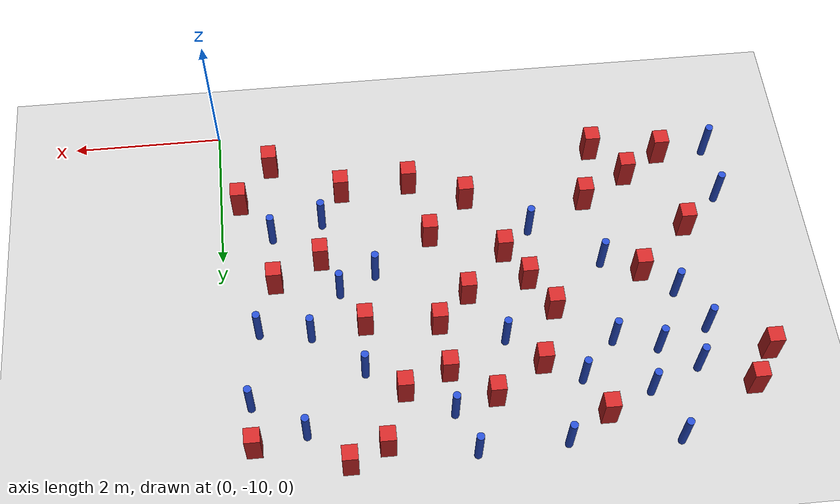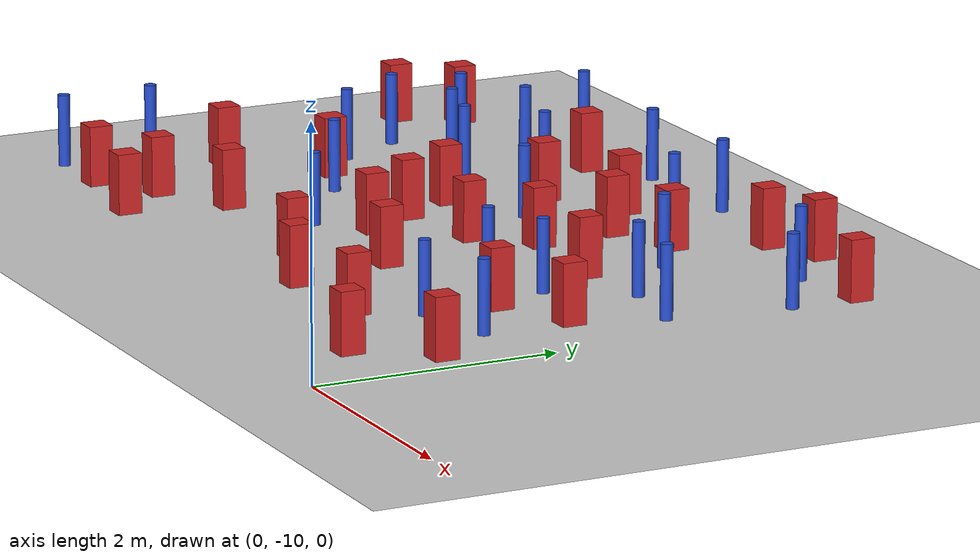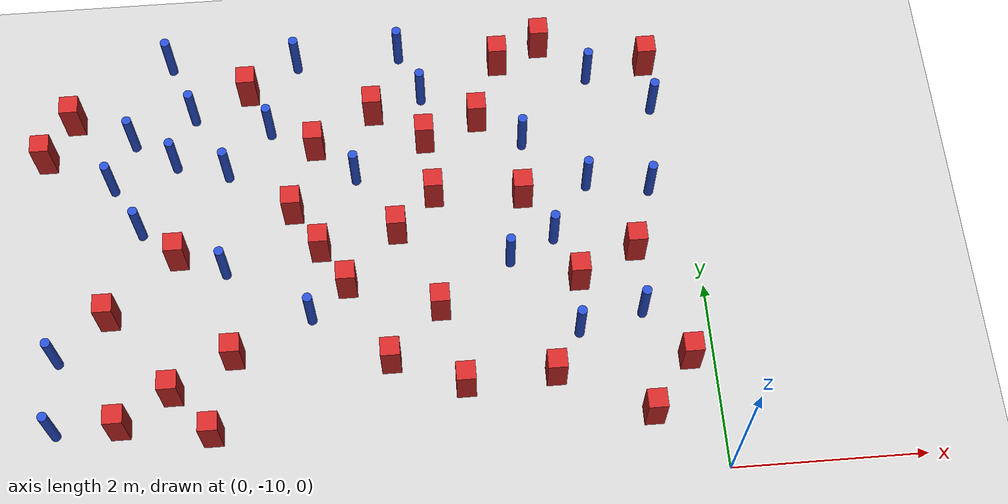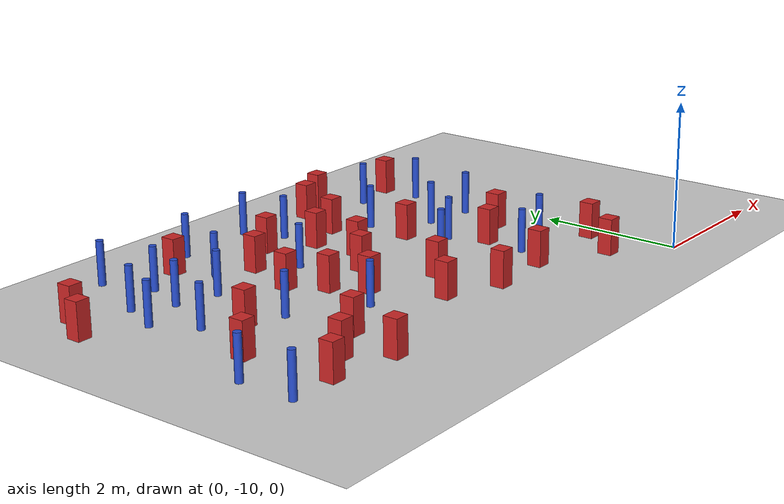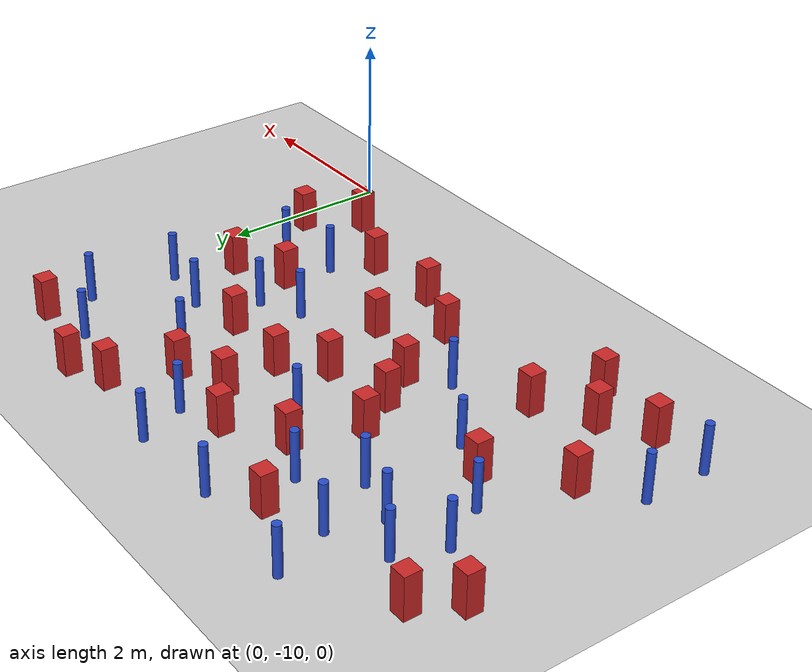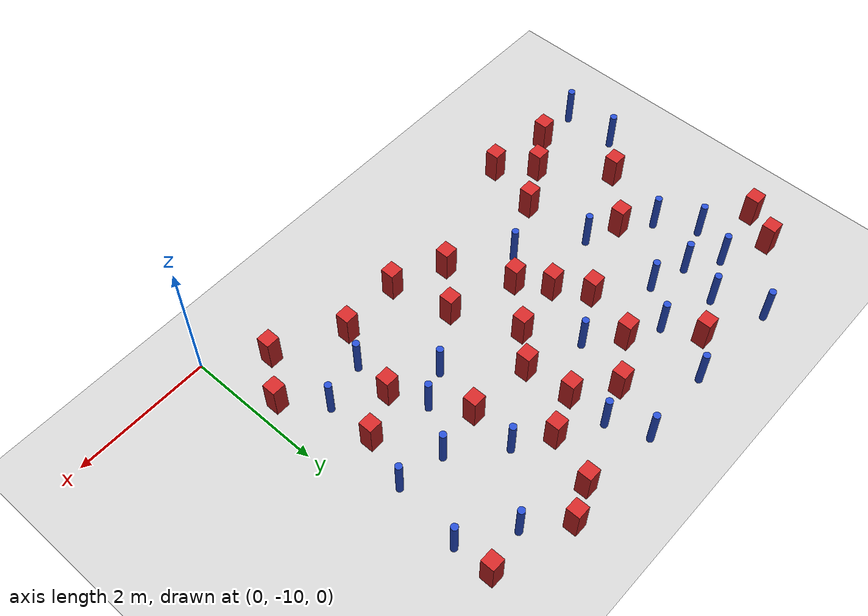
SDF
<sdf version="1.6">
 <world name="default">
  <model name="ground_plane">
   <static>1</static>
   <link name="link">
    <collision name="collision">
     <geometry><plane><normal>0 0 1</normal><size>100 100</size></plane></geometry>
     <surface><friction><ode><mu>100</mu><mu2>50</mu2></ode></friction></surface>
    </collision>
    <visual name="visual">
     <cast_shadows>0</cast_shadows>
     <geometry><plane><normal>0 0 1</normal><size>100 100</size></plane></geometry>
     <material>
      <ambient>1.0 1.0 1.0 1.0</ambient>
      <diffuse>0.8 0.8 0.8 1.0</diffuse>
      <specular>0.01 0.01 0.01 1.000000</specular>
     </material>
    </visual>
   </link>
  </model>
  <model name="square_post_obstacle6">
   <static>true</static>
   <pose>-1.9497129896 -5.14376126057 1.91545236811e-07 -7.35059704564e-06 1.12565212e-07 2.39332434364e-05</pose>
   <link name="link">
    <pose>0 0 0.25 0 -0 0</pose>
    <inertial>
     <mass>100</mass>
     <inertia>
      <ixx>0.166667</ixx>
      <ixy>0</ixy>
      <ixz>0</ixz>
      <iyy>0.166667</iyy>
      <iyz>0</iyz>
      <izz>0.166667</izz>
     </inertia>
    </inertial>
    <collision name="collision"><geometry><box><size>.2 .2 .5</size></box></geometry></collision>
    <visual name="visual">
     <geometry><box><size>.2 .2 .5</size></box></geometry>
     <material>
      <script><name>Gazebo/Red</name><uri>file://media/materials/scripts/gazebo.material</uri></script>
     </material>
    </visual>
   </link>
  </model>
  <model name="square_post_obstacle13">
   <static>true</static>
   <pose>-3.17438952228 -7.16347019154 1.91545236811e-07 -7.35059704564e-06 1.12565212e-07 2.39332434364e-05</pose>
   <link name="link">
    <pose>0 0 0.25 0 -0 0</pose>
    <inertial>
     <mass>100</mass>
     <inertia>
      <ixx>0.166667</ixx>
      <ixy>0</ixy>
      <ixz>0</ixz>
      <iyy>0.166667</iyy>
      <iyz>0</iyz>
      <izz>0.166667</izz>
     </inertia>
    </inertial>
    <collision name="collision"><geometry><box><size>.2 .2 .5</size></box></geometry></collision>
    <visual name="visual">
     <geometry><box><size>.2 .2 .5</size></box></geometry>
     <material>
      <script><name>Gazebo/Red</name><uri>file://media/materials/scripts/gazebo.material</uri></script>
     </material>
    </visual>
   </link>
  </model>
  <model name="square_post_obstacle17">
   <static>true</static>
   <pose>-5.53849942536 -8.81817202763 1.91545236811e-07 -7.35059704564e-06 1.12565212e-07 2.39332434364e-05</pose>
   <link name="link">
    <pose>0 0 0.25 0 -0 0</pose>
    <inertial>
     <mass>100</mass>
     <inertia>
      <ixx>0.166667</ixx>
      <ixy>0</ixy>
      <ixz>0</ixz>
      <iyy>0.166667</iyy>
      <iyz>0</iyz>
      <izz>0.166667</izz>
     </inertia>
    </inertial>
    <collision name="collision"><geometry><box><size>.2 .2 .5</size></box></geometry></collision>
    <visual name="visual">
     <geometry><box><size>.2 .2 .5</size></box></geometry>
     <material>
      <script><name>Gazebo/Red</name><uri>file://media/materials/scripts/gazebo.material</uri></script>
     </material>
    </visual>
   </link>
  </model>
  <model name="square_post_obstacle18">
   <static>true</static>
   <pose>-3.99102402222 -7.31175165487 1.91545236811e-07 -7.35059704564e-06 1.12565212e-07 2.39332434364e-05</pose>
   <link name="link">
    <pose>0 0 0.25 0 -0 0</pose>
    <inertial>
     <mass>100</mass>
     <inertia>
      <ixx>0.166667</ixx>
      <ixy>0</ixy>
      <ixz>0</ixz>
      <iyy>0.166667</iyy>
      <iyz>0</iyz>
      <izz>0.166667</izz>
     </inertia>
    </inertial>
    <collision name="collision"><geometry><box><size>.2 .2 .5</size></box></geometry></collision>
    <visual name="visual">
     <geometry><box><size>.2 .2 .5</size></box></geometry>
     <material>
      <script><name>Gazebo/Red</name><uri>file://media/materials/scripts/gazebo.material</uri></script>
     </material>
    </visual>
   </link>
  </model>
  <model name="square_post_obstacle19">
   <static>true</static>
   <pose>-2.56783436502 -8.94946485661 1.91545236811e-07 -7.35059704564e-06 1.12565212e-07 2.39332434364e-05</pose>
   <link name="link">
    <pose>0 0 0.25 0 -0 0</pose>
    <inertial>
     <mass>100</mass>
     <inertia>
      <ixx>0.166667</ixx>
      <ixy>0</ixy>
      <ixz>0</ixz>
      <iyy>0.166667</iyy>
      <iyz>0</iyz>
      <izz>0.166667</izz>
     </inertia>
    </inertial>
    <collision name="collision"><geometry><box><size>.2 .2 .5</size></box></geometry></collision>
    <visual name="visual">
     <geometry><box><size>.2 .2 .5</size></box></geometry>
     <material>
      <script><name>Gazebo/Red</name><uri>file://media/materials/scripts/gazebo.material</uri></script>
     </material>
    </visual>
   </link>
  </model>
  <model name="pole_obstacle21">
   <static>true</static>
   <pose>-0.969122183617 -5.39257251336 7.38925637345e-09 -8.47170692799e-08 1.2497676509e-08 -1.74513093015e-07</pose>
   <link name="link">
    <pose>0 0 0.3 0 -0 0</pose>
    <inertial>
     <mass>1</mass>
     <inertia><ixx>0.145833</ixx><ixy>0</ixy><ixz>0</ixz><iyy>0.145833</iyy><iyz>0</iyz><izz>0.125</izz></inertia>
    </inertial>
    <collision name="collision">
     <geometry><cylinder><radius>0.05</radius><length>.6</length></cylinder></geometry>
    </collision>
    <visual name="visual">
     <geometry><cylinder><radius>0.05</radius><length>.6</length></cylinder></geometry>
     <material>
      <script><name>Gazebo/Blue</name><uri>file://media/materials/scripts/gazebo.material</uri></script>
     </material>
    </visual>
   </link>
  </model>
  <model name="square_post_obstacle32">
   <static>true</static>
   <pose>-0.262640215279 -8.81967978513 1.91545236811e-07 -7.35059704564e-06 1.12565212e-07 2.39332434364e-05</pose>
   <link name="link">
    <pose>0 0 0.25 0 -0 0</pose>
    <inertial>
     <mass>100</mass>
     <inertia>
      <ixx>0.166667</ixx>
      <ixy>0</ixy>
      <ixz>0</ixz>
      <iyy>0.166667</iyy>
      <iyz>0</iyz>
      <izz>0.166667</izz>
     </inertia>
    </inertial>
    <collision name="collision"><geometry><box><size>.2 .2 .5</size></box></geometry></collision>
    <visual name="visual">
     <geometry><box><size>.2 .2 .5</size></box></geometry>
     <material>
      <script><name>Gazebo/Red</name><uri>file://media/materials/scripts/gazebo.material</uri></script>
     </material>
    </visual>
   </link>
  </model>
  <model name="pole_obstacle31">
   <static>true</static>
   <pose>-1.10753142198 -6.73560948309 7.38925637345e-09 -8.47170692799e-08 1.24976765033e-08 -1.74513093018e-07</pose>
   <link name="link">
    <pose>0 0 0.3 0 -0 0</pose>
    <inertial>
     <mass>1</mass>
     <inertia><ixx>0.145833</ixx><ixy>0</ixy><ixz>0</ixz><iyy>0.145833</iyy><iyz>0</iyz><izz>0.125</izz></inertia>
    </inertial>
    <collision name="collision">
     <geometry><cylinder><radius>0.05</radius><length>.6</length></cylinder></geometry>
    </collision>
    <visual name="visual">
     <geometry><cylinder><radius>0.05</radius><length>.6</length></cylinder></geometry>
     <material>
      <script><name>Gazebo/Blue</name><uri>file://media/materials/scripts/gazebo.material</uri></script>
     </material>
    </visual>
   </link>
  </model>
  <model name="pole_obstacle35">
   <static>true</static>
   <pose>-4.9970792314 -7.49175130237 7.38925637345e-09 -8.47170692796e-08 1.24976764786e-08 -1.74513093032e-07</pose>
   <link name="link">
    <pose>0 0 0.3 0 -0 0</pose>
    <inertial>
     <mass>1</mass>
     <inertia><ixx>0.145833</ixx><ixy>0</ixy><ixz>0</ixz><iyy>0.145833</iyy><iyz>0</iyz><izz>0.125</izz></inertia>
    </inertial>
    <collision name="collision">
     <geometry><cylinder><radius>0.05</radius><length>.6</length></cylinder></geometry>
    </collision>
    <visual name="visual">
     <geometry><cylinder><radius>0.05</radius><length>.6</length></cylinder></geometry>
     <material>
      <script><name>Gazebo/Blue</name><uri>file://media/materials/scripts/gazebo.material</uri></script>
     </material>
    </visual>
   </link>
  </model>
  <model name="pole_obstacle36">
   <static>true</static>
   <pose>-5.97270549547 -5.86932141535 7.38925637345e-09 -8.47170692796e-08 1.24976764786e-08 -1.74513093032e-07</pose>
   <link name="link">
    <pose>0 0 0.3 0 -0 0</pose>
    <inertial>
     <mass>1</mass>
     <inertia><ixx>0.145833</ixx><ixy>0</ixy><ixz>0</ixz><iyy>0.145833</iyy><iyz>0</iyz><izz>0.125</izz></inertia>
    </inertial>
    <collision name="collision">
     <geometry><cylinder><radius>0.05</radius><length>.6</length></cylinder></geometry>
    </collision>
    <visual name="visual">
     <geometry><cylinder><radius>0.05</radius><length>.6</length></cylinder></geometry>
     <material>
      <script><name>Gazebo/Blue</name><uri>file://media/materials/scripts/gazebo.material</uri></script>
     </material>
    </visual>
   </link>
  </model>
  <model name="pole_obstacle37">
   <static>true</static>
   <pose>-3.04485487321 -4.95832950182 7.38925637345e-09 -8.47170692798e-08 1.24976765033e-08 -1.74513093019e-07</pose>
   <link name="link">
    <pose>0 0 0.3 0 -0 0</pose>
    <inertial>
     <mass>1</mass>
     <inertia><ixx>0.145833</ixx><ixy>0</ixy><ixz>0</ixz><iyy>0.145833</iyy><iyz>0</iyz><izz>0.125</izz></inertia>
    </inertial>
    <collision name="collision">
     <geometry><cylinder><radius>0.05</radius><length>.6</length></cylinder></geometry>
    </collision>
    <visual name="visual">
     <geometry><cylinder><radius>0.05</radius><length>.6</length></cylinder></geometry>
     <material>
      <script><name>Gazebo/Blue</name><uri>file://media/materials/scripts/gazebo.material</uri></script>
     </material>
    </visual>
   </link>
  </model>
  <model name="pole_obstacle38">
   <static>true</static>
   <pose>-5.57520680139 -4.91393177287 7.38925637345e-09 -8.47170692796e-08 1.24976764786e-08 -1.74513093032e-07</pose>
   <link name="link">
    <pose>0 0 0.3 0 -0 0</pose>
    <inertial>
     <mass>1</mass>
     <inertia><ixx>0.145833</ixx><ixy>0</ixy><ixz>0</ixz><iyy>0.145833</iyy><iyz>0</iyz><izz>0.125</izz></inertia>
    </inertial>
    <collision name="collision">
     <geometry><cylinder><radius>0.05</radius><length>.6</length></cylinder></geometry>
    </collision>
    <visual name="visual">
     <geometry><cylinder><radius>0.05</radius><length>.6</length></cylinder></geometry>
     <material>
      <script><name>Gazebo/Blue</name><uri>file://media/materials/scripts/gazebo.material</uri></script>
     </material>
    </visual>
   </link>
  </model>
  <model name="pole_obstacle41">
   <static>true</static>
   <pose>-3.5843631164 -6.47086507164 7.38925637345e-09 -8.47170692798e-08 1.24976765033e-08 -1.74513093019e-07</pose>
   <link name="link">
    <pose>0 0 0.3 0 -0 0</pose>
    <inertial>
     <mass>1</mass>
     <inertia><ixx>0.145833</ixx><ixy>0</ixy><ixz>0</ixz><iyy>0.145833</iyy><iyz>0</iyz><izz>0.125</izz></inertia>
    </inertial>
    <collision name="collision">
     <geometry><cylinder><radius>0.05</radius><length>.6</length></cylinder></geometry>
    </collision>
    <visual name="visual">
     <geometry><cylinder><radius>0.05</radius><length>.6</length></cylinder></geometry>
     <material>
      <script><name>Gazebo/Blue</name><uri>file://media/materials/scripts/gazebo.material</uri></script>
     </material>
    </visual>
   </link>
  </model>
  <model name="pole_obstacle42">
   <static>true</static>
   <pose>-0.438257830199 -6.84605124284 7.38925637345e-09 -8.471706928e-08 1.24976765079e-08 -1.74513093015e-07</pose>
   <link name="link">
    <pose>0 0 0.3 0 -0 0</pose>
    <inertial>
     <mass>1</mass>
     <inertia><ixx>0.145833</ixx><ixy>0</ixy><ixz>0</ixz><iyy>0.145833</iyy><iyz>0</iyz><izz>0.125</izz></inertia>
    </inertial>
    <collision name="collision">
     <geometry><cylinder><radius>0.05</radius><length>.6</length></cylinder></geometry>
    </collision>
    <visual name="visual">
     <geometry><cylinder><radius>0.05</radius><length>.6</length></cylinder></geometry>
     <material>
      <script><name>Gazebo/Blue</name><uri>file://media/materials/scripts/gazebo.material</uri></script>
     </material>
    </visual>
   </link>
  </model>
  <model name="square_post_obstacle40">
   <static>true</static>
   <pose>-6.19771248265 -7.93682333372 1.91545236811e-07 -7.35059704564e-06 1.12565212e-07 2.39332434364e-05</pose>
   <link name="link">
    <pose>0 0 0.25 0 -0 0</pose>
    <inertial>
     <mass>100</mass>
     <inertia>
      <ixx>0.166667</ixx>
      <ixy>0</ixy>
      <ixz>0</ixz>
      <iyy>0.166667</iyy>
      <iyz>0</iyz>
      <izz>0.166667</izz>
     </inertia>
    </inertial>
    <collision name="collision"><geometry><box><size>.2 .2 .5</size></box></geometry></collision>
    <visual name="visual">
     <geometry><box><size>.2 .2 .5</size></box></geometry>
     <material>
      <script><name>Gazebo/Red</name><uri>file://media/materials/scripts/gazebo.material</uri></script>
     </material>
    </visual>
   </link>
  </model>
  <model name="square_post_obstacle45">
   <static>true</static>
   <pose>-3.31075218804 -8.63173235767 1.91545236811e-07 -7.35059704564e-06 1.12565212e-07 2.39332434364e-05</pose>
   <link name="link">
    <pose>0 0 0.25 0 -0 0</pose>
    <inertial>
     <mass>100</mass>
     <inertia>
      <ixx>0.166667</ixx>
      <ixy>0</ixy>
      <ixz>0</ixz>
      <iyy>0.166667</iyy>
      <iyz>0</iyz>
      <izz>0.166667</izz>
     </inertia>
    </inertial>
    <collision name="collision"><geometry><box><size>.2 .2 .5</size></box></geometry></collision>
    <visual name="visual">
     <geometry><box><size>.2 .2 .5</size></box></geometry>
     <material>
      <script><name>Gazebo/Red</name><uri>file://media/materials/scripts/gazebo.material</uri></script>
     </material>
    </visual>
   </link>
  </model>
  <model name="pole_obstacle55">
   <static>true</static>
   <pose>-0.294986447135 -5.83506792225 7.38925637345e-09 -8.47170692799e-08 1.24976765096e-08 -1.74513093014e-07</pose>
   <link name="link">
    <pose>0 0 0.3 0 -0 0</pose>
    <inertial>
     <mass>1</mass>
     <inertia><ixx>0.145833</ixx><ixy>0</ixy><ixz>0</ixz><iyy>0.145833</iyy><iyz>0</iyz><izz>0.125</izz></inertia>
    </inertial>
    <collision name="collision">
     <geometry><cylinder><radius>0.05</radius><length>.6</length></cylinder></geometry>
    </collision>
    <visual name="visual">
     <geometry><cylinder><radius>0.05</radius><length>.6</length></cylinder></geometry>
     <material>
      <script><name>Gazebo/Blue</name><uri>file://media/materials/scripts/gazebo.material</uri></script>
     </material>
    </visual>
   </link>
  </model>
  <model name="square_post_obstacle58">
   <static>true</static>
   <pose>-1.80950390535 -6.83405992303 1.91545236811e-07 -7.35059704564e-06 1.12565212e-07 2.39332434364e-05</pose>
   <link name="link">
    <pose>0 0 0.25 0 -0 0</pose>
    <inertial>
     <mass>100</mass>
     <inertia>
      <ixx>0.166667</ixx>
      <ixy>0</ixy>
      <ixz>0</ixz>
      <iyy>0.166667</iyy>
      <iyz>0</iyz>
      <izz>0.166667</izz>
     </inertia>
    </inertial>
    <collision name="collision"><geometry><box><size>.2 .2 .5</size></box></geometry></collision>
    <visual name="visual">
     <geometry><box><size>.2 .2 .5</size></box></geometry>
     <material>
      <script><name>Gazebo/Red</name><uri>file://media/materials/scripts/gazebo.material</uri></script>
     </material>
    </visual>
   </link>
  </model>
  <model name="pole_obstacle57">
   <static>true</static>
   <pose>-5.5201606093 -6.17283178349 7.38925637345e-09 -8.47170692796e-08 1.24976764786e-08 -1.74513093032e-07</pose>
   <link name="link">
    <pose>0 0 0.3 0 -0 0</pose>
    <inertial>
     <mass>1</mass>
     <inertia><ixx>0.145833</ixx><ixy>0</ixy><ixz>0</ixz><iyy>0.145833</iyy><iyz>0</iyz><izz>0.125</izz></inertia>
    </inertial>
    <collision name="collision">
     <geometry><cylinder><radius>0.05</radius><length>.6</length></cylinder></geometry>
    </collision>
    <visual name="visual">
     <geometry><cylinder><radius>0.05</radius><length>.6</length></cylinder></geometry>
     <material>
      <script><name>Gazebo/Blue</name><uri>file://media/materials/scripts/gazebo.material</uri></script>
     </material>
    </visual>
   </link>
  </model>
  <model name="pole_obstacle62">
   <static>true</static>
   <pose>-4.11038051254 -8.08222177292 7.38925637345e-09 -8.471706928e-08 1.24976765081e-08 -1.74513093015e-07</pose>
   <link name="link">
    <pose>0 0 0.3 0 -0 0</pose>
    <inertial>
     <mass>1</mass>
     <inertia><ixx>0.145833</ixx><ixy>0</ixy><ixz>0</ixz><iyy>0.145833</iyy><iyz>0</iyz><izz>0.125</izz></inertia>
    </inertial>
    <collision name="collision">
     <geometry><cylinder><radius>0.05</radius><length>.6</length></cylinder></geometry>
    </collision>
    <visual name="visual">
     <geometry><cylinder><radius>0.05</radius><length>.6</length></cylinder></geometry>
     <material>
      <script><name>Gazebo/Blue</name><uri>file://media/materials/scripts/gazebo.material</uri></script>
     </material>
    </visual>
   </link>
  </model>
  <model name="square_post_obstacle71">
   <static>true</static>
   <pose>-6.91511526196 -6.0185606512 1.91545236811e-07 -7.35059704564e-06 1.12565212e-07 2.39332434364e-05</pose>
   <link name="link">
    <pose>0 0 0.25 0 -0 0</pose>
    <inertial>
     <mass>100</mass>
     <inertia>
      <ixx>0.166667</ixx>
      <ixy>0</ixy>
      <ixz>0</ixz>
      <iyy>0.166667</iyy>
      <iyz>0</iyz>
      <izz>0.166667</izz>
     </inertia>
    </inertial>
    <collision name="collision"><geometry><box><size>.2 .2 .5</size></box></geometry></collision>
    <visual name="visual">
     <geometry><box><size>.2 .2 .5</size></box></geometry>
     <material>
      <script><name>Gazebo/Red</name><uri>file://media/materials/scripts/gazebo.material</uri></script>
     </material>
    </visual>
   </link>
  </model>
  <model name="square_post_obstacle74">
   <static>true</static>
   <pose>-0.67955593136 -7.54920800289 1.91545236811e-07 -7.35059704564e-06 1.12565212e-07 2.39332434364e-05</pose>
   <link name="link">
    <pose>0 0 0.25 0 -0 0</pose>
    <inertial>
     <mass>100</mass>
     <inertia>
      <ixx>0.166667</ixx>
      <ixy>0</ixy>
      <ixz>0</ixz>
      <iyy>0.166667</iyy>
      <iyz>0</iyz>
      <izz>0.166667</izz>
     </inertia>
    </inertial>
    <collision name="collision"><geometry><box><size>.2 .2 .5</size></box></geometry></collision>
    <visual name="visual">
     <geometry><box><size>.2 .2 .5</size></box></geometry>
     <material>
      <script><name>Gazebo/Red</name><uri>file://media/materials/scripts/gazebo.material</uri></script>
     </material>
    </visual>
   </link>
  </model>
  <model name="pole_obstacle81">
   <static>true</static>
   <pose>-4.49014467391 -5.83199437267 7.38925637345e-09 -8.47170692796e-08 1.24976764786e-08 -1.74513093032e-07</pose>
   <link name="link">
    <pose>0 0 0.3 0 -0 0</pose>
    <inertial>
     <mass>1</mass>
     <inertia><ixx>0.145833</ixx><ixy>0</ixy><ixz>0</ixz><iyy>0.145833</iyy><iyz>0</iyz><izz>0.125</izz></inertia>
    </inertial>
    <collision name="collision">
     <geometry><cylinder><radius>0.05</radius><length>.6</length></cylinder></geometry>
    </collision>
    <visual name="visual">
     <geometry><cylinder><radius>0.05</radius><length>.6</length></cylinder></geometry>
     <material>
      <script><name>Gazebo/Blue</name><uri>file://media/materials/scripts/gazebo.material</uri></script>
     </material>
    </visual>
   </link>
  </model>
  <model name="pole_obstacle89">
   <static>true</static>
   <pose>-6.19199381908 -6.40663625146 7.38925637345e-09 -8.47170692796e-08 1.24976764786e-08 -1.74513093032e-07</pose>
   <link name="link">
    <pose>0 0 0.3 0 -0 0</pose>
    <inertial>
     <mass>1</mass>
     <inertia><ixx>0.145833</ixx><ixy>0</ixy><ixz>0</ixz><iyy>0.145833</iyy><iyz>0</iyz><izz>0.125</izz></inertia>
    </inertial>
    <collision name="collision">
     <geometry><cylinder><radius>0.05</radius><length>.6</length></cylinder></geometry>
    </collision>
    <visual name="visual">
     <geometry><cylinder><radius>0.05</radius><length>.6</length></cylinder></geometry>
     <material>
      <script><name>Gazebo/Blue</name><uri>file://media/materials/scripts/gazebo.material</uri></script>
     </material>
    </visual>
   </link>
  </model>
  <model name="square_post_obstacle82">
   <static>true</static>
   <pose>-0.313979481977 -5.27189476098 1.91545236811e-07 -7.35059704564e-06 1.12565212e-07 2.39332434364e-05</pose>
   <link name="link">
    <pose>0 0 0.25 0 -0 0</pose>
    <inertial>
     <mass>100</mass>
     <inertia>
      <ixx>0.166667</ixx>
      <ixy>0</ixy>
      <ixz>0</ixz>
      <iyy>0.166667</iyy>
      <iyz>0</iyz>
      <izz>0.166667</izz>
     </inertia>
    </inertial>
    <collision name="collision"><geometry><box><size>.2 .2 .5</size></box></geometry></collision>
    <visual name="visual">
     <geometry><box><size>.2 .2 .5</size></box></geometry>
     <material>
      <script><name>Gazebo/Red</name><uri>file://media/materials/scripts/gazebo.material</uri></script>
     </material>
    </visual>
   </link>
  </model>
  <model name="square_post_obstacle87">
   <static>true</static>
   <pose>-6.06270208593 -9.1386510501 1.91545236811e-07 -7.35059704564e-06 1.12565212e-07 2.39332434364e-05</pose>
   <link name="link">
    <pose>0 0 0.25 0 -0 0</pose>
    <inertial>
     <mass>100</mass>
     <inertia>
      <ixx>0.166667</ixx>
      <ixy>0</ixy>
      <ixz>0</ixz>
      <iyy>0.166667</iyy>
      <iyz>0</iyz>
      <izz>0.166667</izz>
     </inertia>
    </inertial>
    <collision name="collision"><geometry><box><size>.2 .2 .5</size></box></geometry></collision>
    <visual name="visual">
     <geometry><box><size>.2 .2 .5</size></box></geometry>
     <material>
      <script><name>Gazebo/Red</name><uri>file://media/materials/scripts/gazebo.material</uri></script>
     </material>
    </visual>
   </link>
  </model>
  <model name="pole_obstacle98">
   <static>true</static>
   <pose>-2.00123064121 -7.57919189433 7.38925637345e-09 -8.471706928e-08 1.24976765103e-08 -1.74513093015e-07</pose>
   <link name="link">
    <pose>0 0 0.3 0 -0 0</pose>
    <inertial>
     <mass>1</mass>
     <inertia><ixx>0.145833</ixx><ixy>0</ixy><ixz>0</ixz><iyy>0.145833</iyy><iyz>0</iyz><izz>0.125</izz></inertia>
    </inertial>
    <collision name="collision">
     <geometry><cylinder><radius>0.05</radius><length>.6</length></cylinder></geometry>
    </collision>
    <visual name="visual">
     <geometry><cylinder><radius>0.05</radius><length>.6</length></cylinder></geometry>
     <material>
      <script><name>Gazebo/Blue</name><uri>file://media/materials/scripts/gazebo.material</uri></script>
     </material>
    </visual>
   </link>
  </model>
  <model name="pole_obstacle101">
   <static>true</static>
   <pose>-4.17830520951 -4.99860217856 7.38925637345e-09 -8.47170692796e-08 1.24976764786e-08 -1.74513093032e-07</pose>
   <link name="link">
    <pose>0 0 0.3 0 -0 0</pose>
    <inertial>
     <mass>1</mass>
     <inertia><ixx>0.145833</ixx><ixy>0</ixy><ixz>0</ixz><iyy>0.145833</iyy><iyz>0</iyz><izz>0.125</izz></inertia>
    </inertial>
    <collision name="collision">
     <geometry><cylinder><radius>0.05</radius><length>.6</length></cylinder></geometry>
    </collision>
    <visual name="visual">
     <geometry><cylinder><radius>0.05</radius><length>.6</length></cylinder></geometry>
     <material>
      <script><name>Gazebo/Blue</name><uri>file://media/materials/scripts/gazebo.material</uri></script>
     </material>
    </visual>
   </link>
  </model>
  <model name="pole_obstacle105">
   <static>true</static>
   <pose>-5.88568498993 -6.9634444865 7.38925637345e-09 -8.47170692796e-08 1.24976764786e-08 -1.74513093032e-07</pose>
   <link name="link">
    <pose>0 0 0.3 0 -0 0</pose>
    <inertial>
     <mass>1</mass>
     <inertia><ixx>0.145833</ixx><ixy>0</ixy><ixz>0</ixz><iyy>0.145833</iyy><iyz>0</iyz><izz>0.125</izz></inertia>
    </inertial>
    <collision name="collision">
     <geometry><cylinder><radius>0.05</radius><length>.6</length></cylinder></geometry>
    </collision>
    <visual name="visual">
     <geometry><cylinder><radius>0.05</radius><length>.6</length></cylinder></geometry>
     <material>
      <script><name>Gazebo/Blue</name><uri>file://media/materials/scripts/gazebo.material</uri></script>
     </material>
    </visual>
   </link>
  </model>
  <model name="pole_obstacle109">
   <static>true</static>
   <pose>-5.31926657859 -5.59316954823 7.38925637345e-09 -8.47170692796e-08 1.24976764786e-08 -1.74513093032e-07</pose>
   <link name="link">
    <pose>0 0 0.3 0 -0 0</pose>
    <inertial>
     <mass>1</mass>
     <inertia><ixx>0.145833</ixx><ixy>0</ixy><ixz>0</ixz><iyy>0.145833</iyy><iyz>0</iyz><izz>0.125</izz></inertia>
    </inertial>
    <collision name="collision">
     <geometry><cylinder><radius>0.05</radius><length>.6</length></cylinder></geometry>
    </collision>
    <visual name="visual">
     <geometry><cylinder><radius>0.05</radius><length>.6</length></cylinder></geometry>
     <material>
      <script><name>Gazebo/Blue</name><uri>file://media/materials/scripts/gazebo.material</uri></script>
     </material>
    </visual>
   </link>
  </model>
  <model name="square_post_obstacle103">
   <static>true</static>
   <pose>-1.64591134655 -8.89314380654 1.91545236811e-07 -7.35059704564e-06 1.12565212e-07 2.39332434364e-05</pose>
   <link name="link">
    <pose>0 0 0.25 0 -0 0</pose>
    <inertial>
     <mass>100</mass>
     <inertia>
      <ixx>0.166667</ixx>
      <ixy>0</ixy>
      <ixz>0</ixz>
      <iyy>0.166667</iyy>
      <iyz>0</iyz>
      <izz>0.166667</izz>
     </inertia>
    </inertial>
    <collision name="collision"><geometry><box><size>.2 .2 .5</size></box></geometry></collision>
    <visual name="visual">
     <geometry><box><size>.2 .2 .5</size></box></geometry>
     <material>
      <script><name>Gazebo/Red</name><uri>file://media/materials/scripts/gazebo.material</uri></script>
     </material>
    </visual>
   </link>
  </model>
  <model name="square_post_obstacle108">
   <static>true</static>
   <pose>-4.91314975599 -8.4684737282 1.91545236811e-07 -7.35059704564e-06 1.12565212e-07 2.39332434364e-05</pose>
   <link name="link">
    <pose>0 0 0.25 0 -0 0</pose>
    <inertial>
     <mass>100</mass>
     <inertia>
      <ixx>0.166667</ixx>
      <ixy>0</ixy>
      <ixz>0</ixz>
      <iyy>0.166667</iyy>
      <iyz>0</iyz>
      <izz>0.166667</izz>
     </inertia>
    </inertial>
    <collision name="collision"><geometry><box><size>.2 .2 .5</size></box></geometry></collision>
    <visual name="visual">
     <geometry><box><size>.2 .2 .5</size></box></geometry>
     <material>
      <script><name>Gazebo/Red</name><uri>file://media/materials/scripts/gazebo.material</uri></script>
     </material>
    </visual>
   </link>
  </model>
  <model name="pole_obstacle129">
   <static>true</static>
   <pose>-0.678164666736 -8.26699192963 7.38925637345e-09 -8.47170692797e-08 1.249767648e-08 -1.74513093032e-07</pose>
   <link name="link">
    <pose>0 0 0.3 0 -0 0</pose>
    <inertial>
     <mass>1</mass>
     <inertia><ixx>0.145833</ixx><ixy>0</ixy><ixz>0</ixz><iyy>0.145833</iyy><iyz>0</iyz><izz>0.125</izz></inertia>
    </inertial>
    <collision name="collision">
     <geometry><cylinder><radius>0.05</radius><length>.6</length></cylinder></geometry>
    </collision>
    <visual name="visual">
     <geometry><cylinder><radius>0.05</radius><length>.6</length></cylinder></geometry>
     <material>
      <script><name>Gazebo/Blue</name><uri>file://media/materials/scripts/gazebo.material</uri></script>
     </material>
    </visual>
   </link>
  </model>
  <model name="square_post_obstacle117">
   <static>true</static>
   <pose>-5.4892324698 -7.29637990237 1.91545236811e-07 -7.35059704564e-06 1.12565212e-07 2.39332434364e-05</pose>
   <link name="link">
    <pose>0 0 0.25 0 -0 0</pose>
    <inertial>
     <mass>100</mass>
     <inertia>
      <ixx>0.166667</ixx>
      <ixy>0</ixy>
      <ixz>0</ixz>
      <iyy>0.166667</iyy>
      <iyz>0</iyz>
      <izz>0.166667</izz>
     </inertia>
    </inertial>
    <collision name="collision"><geometry><box><size>.2 .2 .5</size></box></geometry></collision>
    <visual name="visual">
     <geometry><box><size>.2 .2 .5</size></box></geometry>
     <material>
      <script><name>Gazebo/Red</name><uri>file://media/materials/scripts/gazebo.material</uri></script>
     </material>
    </visual>
   </link>
  </model>
  <model name="square_post_obstacle121">
   <static>true</static>
   <pose>-2.81356607896 -6.07719099109 1.91545236811e-07 -7.35059704564e-06 1.12565212e-07 2.39332434364e-05</pose>
   <link name="link">
    <pose>0 0 0.25 0 -0 0</pose>
    <inertial>
     <mass>100</mass>
     <inertia>
      <ixx>0.166667</ixx>
      <ixy>0</ixy>
      <ixz>0</ixz>
      <iyy>0.166667</iyy>
      <iyz>0</iyz>
      <izz>0.166667</izz>
     </inertia>
    </inertial>
    <collision name="collision"><geometry><box><size>.2 .2 .5</size></box></geometry></collision>
    <visual name="visual">
     <geometry><box><size>.2 .2 .5</size></box></geometry>
     <material>
      <script><name>Gazebo/Red</name><uri>file://media/materials/scripts/gazebo.material</uri></script>
     </material>
    </visual>
   </link>
  </model>
  <model name="square_post_obstacle129">
   <static>true</static>
   <pose>-2.75827544077 -6.75393714857 1.91545236811e-07 -7.35059704564e-06 1.12565212e-07 2.39332434364e-05</pose>
   <link name="link">
    <pose>0 0 0.25 0 -0 0</pose>
    <inertial>
     <mass>100</mass>
     <inertia>
      <ixx>0.166667</ixx>
      <ixy>0</ixy>
      <ixz>0</ixz>
      <iyy>0.166667</iyy>
      <iyz>0</iyz>
      <izz>0.166667</izz>
     </inertia>
    </inertial>
    <collision name="collision"><geometry><box><size>.2 .2 .5</size></box></geometry></collision>
    <visual name="visual">
     <geometry><box><size>.2 .2 .5</size></box></geometry>
     <material>
      <script><name>Gazebo/Red</name><uri>file://media/materials/scripts/gazebo.material</uri></script>
     </material>
    </visual>
   </link>
  </model>
  <model name="pole_obstacle151">
   <static>true</static>
   <pose>-1.35346854451 -8.43674066633 7.38925637345e-09 -8.47170692798e-08 1.24976764881e-08 -1.74513093027e-07</pose>
   <link name="link">
    <pose>0 0 0.3 0 -0 0</pose>
    <inertial>
     <mass>1</mass>
     <inertia><ixx>0.145833</ixx><ixy>0</ixy><ixz>0</ixz><iyy>0.145833</iyy><iyz>0</iyz><izz>0.125</izz></inertia>
    </inertial>
    <collision name="collision">
     <geometry><cylinder><radius>0.05</radius><length>.6</length></cylinder></geometry>
    </collision>
    <visual name="visual">
     <geometry><cylinder><radius>0.05</radius><length>.6</length></cylinder></geometry>
     <material>
      <script><name>Gazebo/Blue</name><uri>file://media/materials/scripts/gazebo.material</uri></script>
     </material>
    </visual>
   </link>
  </model>
  <model name="pole_obstacle152">
   <static>true</static>
   <pose>-1.51983417127 -7.34507376578 7.38925637345e-09 -8.47170692799e-08 1.24976765033e-08 -1.74513093018e-07</pose>
   <link name="link">
    <pose>0 0 0.3 0 -0 0</pose>
    <inertial>
     <mass>1</mass>
     <inertia><ixx>0.145833</ixx><ixy>0</ixy><ixz>0</ixz><iyy>0.145833</iyy><iyz>0</iyz><izz>0.125</izz></inertia>
    </inertial>
    <collision name="collision">
     <geometry><cylinder><radius>0.05</radius><length>.6</length></cylinder></geometry>
    </collision>
    <visual name="visual">
     <geometry><cylinder><radius>0.05</radius><length>.6</length></cylinder></geometry>
     <material>
      <script><name>Gazebo/Blue</name><uri>file://media/materials/scripts/gazebo.material</uri></script>
     </material>
    </visual>
   </link>
  </model>
  <model name="square_post_obstacle150">
   <static>true</static>
   <pose>-2.77066763093 -8.08174488607 1.91545236811e-07 -7.35059704564e-06 1.12565212e-07 2.39332434364e-05</pose>
   <link name="link">
    <pose>0 0 0.25 0 -0 0</pose>
    <inertial>
     <mass>100</mass>
     <inertia>
      <ixx>0.166667</ixx>
      <ixy>0</ixy>
      <ixz>0</ixz>
      <iyy>0.166667</iyy>
      <iyz>0</iyz>
      <izz>0.166667</izz>
     </inertia>
    </inertial>
    <collision name="collision"><geometry><box><size>.2 .2 .5</size></box></geometry></collision>
    <visual name="visual">
     <geometry><box><size>.2 .2 .5</size></box></geometry>
     <material>
      <script><name>Gazebo/Red</name><uri>file://media/materials/scripts/gazebo.material</uri></script>
     </material>
    </visual>
   </link>
  </model>
  <model name="pole_obstacle157">
   <static>true</static>
   <pose>-1.75605028002 -6.17161171457 7.38925637345e-09 -8.47170692799e-08 1.24976765033e-08 -1.74513093018e-07</pose>
   <link name="link">
    <pose>0 0 0.3 0 -0 0</pose>
    <inertial>
     <mass>1</mass>
     <inertia><ixx>0.145833</ixx><ixy>0</ixy><ixz>0</ixz><iyy>0.145833</iyy><iyz>0</iyz><izz>0.125</izz></inertia>
    </inertial>
    <collision name="collision">
     <geometry><cylinder><radius>0.05</radius><length>.6</length></cylinder></geometry>
    </collision>
    <visual name="visual">
     <geometry><cylinder><radius>0.05</radius><length>.6</length></cylinder></geometry>
     <material>
      <script><name>Gazebo/Blue</name><uri>file://media/materials/scripts/gazebo.material</uri></script>
     </material>
    </visual>
   </link>
  </model>
  <model name="pole_obstacle160">
   <static>true</static>
   <pose>-4.9582054611 -6.33167605787 7.38925637345e-09 -8.47170692796e-08 1.24976764786e-08 -1.74513093032e-07</pose>
   <link name="link">
    <pose>0 0 0.3 0 -0 0</pose>
    <inertial>
     <mass>1</mass>
     <inertia><ixx>0.145833</ixx><ixy>0</ixy><ixz>0</ixz><iyy>0.145833</iyy><iyz>0</iyz><izz>0.125</izz></inertia>
    </inertial>
    <collision name="collision">
     <geometry><cylinder><radius>0.05</radius><length>.6</length></cylinder></geometry>
    </collision>
    <visual name="visual">
     <geometry><cylinder><radius>0.05</radius><length>.6</length></cylinder></geometry>
     <material>
      <script><name>Gazebo/Blue</name><uri>file://media/materials/scripts/gazebo.material</uri></script>
     </material>
    </visual>
   </link>
  </model>
  <model name="square_post_obstacle160">
   <static>true</static>
   <pose>-5.13279064727 -9.28371250379 1.91545236811e-07 -7.35059704564e-06 1.12565212e-07 2.39332434364e-05</pose>
   <link name="link">
    <pose>0 0 0.25 0 -0 0</pose>
    <inertial>
     <mass>100</mass>
     <inertia>
      <ixx>0.166667</ixx>
      <ixy>0</ixy>
      <ixz>0</ixz>
      <iyy>0.166667</iyy>
      <iyz>0</iyz>
      <izz>0.166667</izz>
     </inertia>
    </inertial>
    <collision name="collision"><geometry><box><size>.2 .2 .5</size></box></geometry></collision>
    <visual name="visual">
     <geometry><box><size>.2 .2 .5</size></box></geometry>
     <material>
      <script><name>Gazebo/Red</name><uri>file://media/materials/scripts/gazebo.material</uri></script>
     </material>
    </visual>
   </link>
  </model>
  <model name="square_post_obstacle161">
   <static>true</static>
   <pose>-0.701380638994 -9.38756197267 1.91545236811e-07 -7.35059704564e-06 1.12565212e-07 2.39332434364e-05</pose>
   <link name="link">
    <pose>0 0 0.25 0 -0 0</pose>
    <inertial>
     <mass>100</mass>
     <inertia>
      <ixx>0.166667</ixx>
      <ixy>0</ixy>
      <ixz>0</ixz>
      <iyy>0.166667</iyy>
      <iyz>0</iyz>
      <izz>0.166667</izz>
     </inertia>
    </inertial>
    <collision name="collision"><geometry><box><size>.2 .2 .5</size></box></geometry></collision>
    <visual name="visual">
     <geometry><box><size>.2 .2 .5</size></box></geometry>
     <material>
      <script><name>Gazebo/Red</name><uri>file://media/materials/scripts/gazebo.material</uri></script>
     </material>
    </visual>
   </link>
  </model>
  <model name="square_post_obstacle162">
   <static>true</static>
   <pose>-4.0099101114 -6.07826757937 1.91545236811e-07 -7.35059704564e-06 1.12565212e-07 2.39332434364e-05</pose>
   <link name="link">
    <pose>0 0 0.25 0 -0 0</pose>
    <inertial>
     <mass>100</mass>
     <inertia>
      <ixx>0.166667</ixx>
      <ixy>0</ixy>
      <ixz>0</ixz>
      <iyy>0.166667</iyy>
      <iyz>0</iyz>
      <izz>0.166667</izz>
     </inertia>
    </inertial>
    <collision name="collision"><geometry><box><size>.2 .2 .5</size></box></geometry></collision>
    <visual name="visual">
     <geometry><box><size>.2 .2 .5</size></box></geometry>
     <material>
      <script><name>Gazebo/Red</name><uri>file://media/materials/scripts/gazebo.material</uri></script>
     </material>
    </visual>
   </link>
  </model>
  <model name="square_post_obstacle181">
   <static>true</static>
   <pose>-6.6231736425 -5.55936909181 1.91545236811e-07 -7.35059704564e-06 1.12565212e-07 2.39332434364e-05</pose>
   <link name="link">
    <pose>0 0 0.25 0 -0 0</pose>
    <inertial>
     <mass>100</mass>
     <inertia>
      <ixx>0.166667</ixx>
      <ixy>0</ixy>
      <ixz>0</ixz>
      <iyy>0.166667</iyy>
      <iyz>0</iyz>
      <izz>0.166667</izz>
     </inertia>
    </inertial>
    <collision name="collision"><geometry><box><size>.2 .2 .5</size></box></geometry></collision>
    <visual name="visual">
     <geometry><box><size>.2 .2 .5</size></box></geometry>
     <material>
      <script><name>Gazebo/Red</name><uri>file://media/materials/scripts/gazebo.material</uri></script>
     </material>
    </visual>
   </link>
  </model>
  <model name="square_post_obstacle183">
   <static>true</static>
   <pose>-3.35988689795 -5.68308262929 1.91545236811e-07 -7.35059704564e-06 1.12565212e-07 2.39332434364e-05</pose>
   <link name="link">
    <pose>0 0 0.25 0 -0 0</pose>
    <inertial>
     <mass>100</mass>
     <inertia>
      <ixx>0.166667</ixx>
      <ixy>0</ixy>
      <ixz>0</ixz>
      <iyy>0.166667</iyy>
      <iyz>0</iyz>
      <izz>0.166667</izz>
     </inertia>
    </inertial>
    <collision name="collision"><geometry><box><size>.2 .2 .5</size></box></geometry></collision>
    <visual name="visual">
     <geometry><box><size>.2 .2 .5</size></box></geometry>
     <material>
      <script><name>Gazebo/Red</name><uri>file://media/materials/scripts/gazebo.material</uri></script>
     </material>
    </visual>
   </link>
  </model>
  <model name="square_post_obstacle193">
   <static>true</static>
   <pose>-4.2653455369 -6.84043381694 1.91545236811e-07 -7.35059704564e-06 1.12565212e-07 2.39332434364e-05</pose>
   <link name="link">
    <pose>0 0 0.25 0 -0 0</pose>
    <inertial>
     <mass>100</mass>
     <inertia>
      <ixx>0.166667</ixx>
      <ixy>0</ixy>
      <ixz>0</ixz>
      <iyy>0.166667</iyy>
      <iyz>0</iyz>
      <izz>0.166667</izz>
     </inertia>
    </inertial>
    <collision name="collision"><geometry><box><size>.2 .2 .5</size></box></geometry></collision>
    <visual name="visual">
     <geometry><box><size>.2 .2 .5</size></box></geometry>
     <material>
      <script><name>Gazebo/Red</name><uri>file://media/materials/scripts/gazebo.material</uri></script>
     </material>
    </visual>
   </link>
  </model>
  <model name="square_post_obstacle197">
   <static>true</static>
   <pose>-1.47336951509 -4.9442247875 1.91545236811e-07 -7.35059704564e-06 1.12565212e-07 2.39332434364e-05</pose>
   <link name="link">
    <pose>0 0 0.25 0 -0 0</pose>
    <inertial>
     <mass>100</mass>
     <inertia>
      <ixx>0.166667</ixx>
      <ixy>0</ixy>
      <ixz>0</ixz>
      <iyy>0.166667</iyy>
      <iyz>0</iyz>
      <izz>0.166667</izz>
     </inertia>
    </inertial>
    <collision name="collision"><geometry><box><size>.2 .2 .5</size></box></geometry></collision>
    <visual name="visual">
     <geometry><box><size>.2 .2 .5</size></box></geometry>
     <material>
      <script><name>Gazebo/Red</name><uri>file://media/materials/scripts/gazebo.material</uri></script>
     </material>
    </visual>
   </link>
  </model>
  <model name="square_post_obstacle199">
   <static>true</static>
   <pose>-1.30161747225 -7.84928314851 1.91545236811e-07 -7.35059704564e-06 1.12565212e-07 2.39332434364e-05</pose>
   <link name="link">
    <pose>0 0 0.25 0 -0 0</pose>
    <inertial>
     <mass>100</mass>
     <inertia>
      <ixx>0.166667</ixx>
      <ixy>0</ixy>
      <ixz>0</ixz>
      <iyy>0.166667</iyy>
      <iyz>0</iyz>
      <izz>0.166667</izz>
     </inertia>
    </inertial>
    <collision name="collision"><geometry><box><size>.2 .2 .5</size></box></geometry></collision>
    <visual name="visual">
     <geometry><box><size>.2 .2 .5</size></box></geometry>
     <material>
      <script><name>Gazebo/Red</name><uri>file://media/materials/scripts/gazebo.material</uri></script>
     </material>
    </visual>
   </link>
  </model>
  <model name="pole_obstacle196">
   <static>true</static>
   <pose>-6.71898109889 -9.15204795214 7.38925637345e-09 -8.471706928e-08 1.24976765081e-08 -1.74513093015e-07</pose>
   <link name="link">
    <pose>0 0 0.3 0 -0 0</pose>
    <inertial>
     <mass>1</mass>
     <inertia><ixx>0.145833</ixx><ixy>0</ixy><ixz>0</ixz><iyy>0.145833</iyy><iyz>0</iyz><izz>0.125</izz></inertia>
    </inertial>
    <collision name="collision">
     <geometry><cylinder><radius>0.05</radius><length>.6</length></cylinder></geometry>
    </collision>
    <visual name="visual">
     <geometry><cylinder><radius>0.05</radius><length>.6</length></cylinder></geometry>
     <material>
      <script><name>Gazebo/Blue</name><uri>file://media/materials/scripts/gazebo.material</uri></script>
     </material>
    </visual>
   </link>
  </model>
  <model name="square_post_obstacle209">
   <static>true</static>
   <pose>-4.71794113589 -5.32807682465 1.91545236811e-07 -7.35059704564e-06 1.12565212e-07 2.39332434364e-05</pose>
   <link name="link">
    <pose>0 0 0.25 0 -0 0</pose>
    <inertial>
     <mass>100</mass>
     <inertia>
      <ixx>0.166667</ixx>
      <ixy>0</ixy>
      <ixz>0</ixz>
      <iyy>0.166667</iyy>
      <iyz>0</iyz>
      <izz>0.166667</izz>
     </inertia>
    </inertial>
    <collision name="collision"><geometry><box><size>.2 .2 .5</size></box></geometry></collision>
    <visual name="visual">
     <geometry><box><size>.2 .2 .5</size></box></geometry>
     <material>
      <script><name>Gazebo/Red</name><uri>file://media/materials/scripts/gazebo.material</uri></script>
     </material>
    </visual>
   </link>
  </model>
  <model name="square_post_obstacle211">
   <static>true</static>
   <pose>-2.23049798611 -5.85297602259 1.91545236811e-07 -7.35059704564e-06 1.12565212e-07 2.39332434364e-05</pose>
   <link name="link">
    <pose>0 0 0.25 0 -0 0</pose>
    <inertial>
     <mass>100</mass>
     <inertia>
      <ixx>0.166667</ixx>
      <ixy>0</ixy>
      <ixz>0</ixz>
      <iyy>0.166667</iyy>
      <iyz>0</iyz>
      <izz>0.166667</izz>
     </inertia>
    </inertial>
    <collision name="collision"><geometry><box><size>.2 .2 .5</size></box></geometry></collision>
    <visual name="visual">
     <geometry><box><size>.2 .2 .5</size></box></geometry>
     <material>
      <script><name>Gazebo/Red</name><uri>file://media/materials/scripts/gazebo.material</uri></script>
     </material>
    </visual>
   </link>
  </model>
  <model name="square_post_obstacle218">
   <static>true</static>
   <pose>-3.72525442928 -7.75315763357 1.91545236811e-07 -7.35059704564e-06 1.12565212e-07 2.39332434364e-05</pose>
   <link name="link">
    <pose>0 0 0.25 0 -0 0</pose>
    <inertial>
     <mass>100</mass>
     <inertia>
      <ixx>0.166667</ixx>
      <ixy>0</ixy>
      <ixz>0</ixz>
      <iyy>0.166667</iyy>
      <iyz>0</iyz>
      <izz>0.166667</izz>
     </inertia>
    </inertial>
    <collision name="collision"><geometry><box><size>.2 .2 .5</size></box></geometry></collision>
    <visual name="visual">
     <geometry><box><size>.2 .2 .5</size></box></geometry>
     <material>
      <script><name>Gazebo/Red</name><uri>file://media/materials/scripts/gazebo.material</uri></script>
     </material>
    </visual>
   </link>
  </model>
  <model name="pole_obstacle208">
   <static>true</static>
   <pose>-6.722662808 -8.37410409988 7.38925637345e-09 -8.471706928e-08 1.24976765081e-08 -1.74513093015e-07</pose>
   <link name="link">
    <pose>0 0 0.3 0 -0 0</pose>
    <inertial>
     <mass>1</mass>
     <inertia><ixx>0.145833</ixx><ixy>0</ixy><ixz>0</ixz><iyy>0.145833</iyy><iyz>0</iyz><izz>0.125</izz></inertia>
    </inertial>
    <collision name="collision">
     <geometry><cylinder><radius>0.05</radius><length>.6</length></cylinder></geometry>
    </collision>
    <visual name="visual">
     <geometry><cylinder><radius>0.05</radius><length>.6</length></cylinder></geometry>
     <material>
      <script><name>Gazebo/Blue</name><uri>file://media/materials/scripts/gazebo.material</uri></script>
     </material>
    </visual>
   </link>
  </model>
  <model name="pole_obstacle217">
   <static>true</static>
   <pose>-2.82435999043 -5.51473997922 7.38925637345e-09 -8.47170692794e-08 1.24976764468e-08 -1.7451309304e-07</pose>
   <link name="link">
    <pose>0 0 0.3 0 -0 0</pose>
    <inertial>
     <mass>1</mass>
     <inertia><ixx>0.145833</ixx><ixy>0</ixy><ixz>0</ixz><iyy>0.145833</iyy><iyz>0</iyz><izz>0.125</izz></inertia>
    </inertial>
    <collision name="collision">
     <geometry><cylinder><radius>0.05</radius><length>.6</length></cylinder></geometry>
    </collision>
    <visual name="visual">
     <geometry><cylinder><radius>0.05</radius><length>.6</length></cylinder></geometry>
     <material>
      <script><name>Gazebo/Blue</name><uri>file://media/materials/scripts/gazebo.material</uri></script>
     </material>
    </visual>
   </link>
  </model>
 </world>
</sdf>
